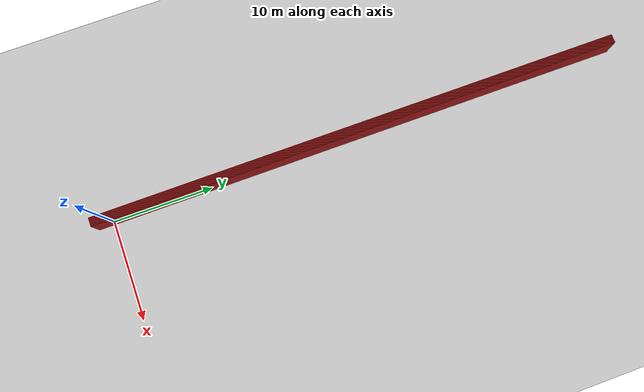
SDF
<sdf version="1.4">
 <world name="1_wall">
  <model name="ground_plane">
   <static>1</static>
   <link name="link">
    <collision name="collision">
     <geometry><plane><normal>0 0 1</normal><size>1000 1000</size></plane></geometry>
     <surface><friction><ode><mu>100</mu><mu2>50</mu2></ode></friction></surface>
    </collision>
    <visual name="visual">
     <cast_shadows>0</cast_shadows>
     <geometry><plane><normal>0 0 1</normal><size>10000 10000</size></plane></geometry>
     <material>
      <script><uri>file://media/materials/scripts/gazebo.material</uri><name>Gazebo/Grey</name></script>
     </material>
    </visual>
    <velocity_decay><linear>0</linear><angular>0</angular></velocity_decay>
   </link>
  </model>
  <model name="Wall_18">
   <static>1</static>
   <link name="Wall_18">
    <collision name="Wall_Collision_18">
     <geometry><box><size>53.65 0.05 2.5</size></box></geometry>
     <pose>0 0 1.25 0 -0 0</pose>
    </collision>
    <visual name="Wall_Visual_18">
     <pose>0 0 1.25 0 -0 0</pose>
     <geometry><box><size>53.65 0.05 2.5</size></box></geometry>
     <material>
      <script><uri>file://media/materials/scripts/gazebo.material</uri><name>Gazebo/Red</name></script>
     </material>
    </visual>
    <velocity_decay><linear>0</linear><angular>0</angular></velocity_decay>
    <pose>-0.6 25.3 0 0 0 1.5707963267948966</pose>
   </link>
  </model>
  <model name="Wall_19">
   <static>1</static>
   <link name="Wall_19">
    <collision name="Wall_Collision_19">
     <geometry><box><size>53.65 0.05 2.5</size></box></geometry>
     <pose>0 0 1.25 0 -0 0</pose>
    </collision>
    <visual name="Wall_Visual_19">
     <pose>0 0 1.25 0 -0 0</pose>
     <geometry><box><size>53.65 0.05 2.5</size></box></geometry>
     <material>
      <script><uri>file://media/materials/scripts/gazebo.material</uri><name>Gazebo/Red</name></script>
     </material>
    </visual>
    <velocity_decay><linear>0</linear><angular>0</angular></velocity_decay>
    <pose>-0.55 25.3 0 0 0 1.5707963267948966</pose>
   </link>
  </model>
  <model name="Wall_20">
   <static>1</static>
   <link name="Wall_20">
    <collision name="Wall_Collision_20">
     <geometry><box><size>53.65 0.05 2.5</size></box></geometry>
     <pose>0 0 1.25 0 -0 0</pose>
    </collision>
    <visual name="Wall_Visual_20">
     <pose>0 0 1.25 0 -0 0</pose>
     <geometry><box><size>53.65 0.05 2.5</size></box></geometry>
     <material>
      <script><uri>file://media/materials/scripts/gazebo.material</uri><name>Gazebo/Red</name></script>
     </material>
    </visual>
    <velocity_decay><linear>0</linear><angular>0</angular></velocity_decay>
    <pose>-0.5 25.3 0 0 0 1.5707963267948966</pose>
   </link>
  </model>
  <model name="Wall_21">
   <static>1</static>
   <link name="Wall_21">
    <collision name="Wall_Collision_21">
     <geometry><box><size>53.65 0.05 2.5</size></box></geometry>
     <pose>0 0 1.25 0 -0 0</pose>
    </collision>
    <visual name="Wall_Visual_21">
     <pose>0 0 1.25 0 -0 0</pose>
     <geometry><box><size>53.65 0.05 2.5</size></box></geometry>
     <material>
      <script><uri>file://media/materials/scripts/gazebo.material</uri><name>Gazebo/Red</name></script>
     </material>
    </visual>
    <velocity_decay><linear>0</linear><angular>0</angular></velocity_decay>
    <pose>-0.45 25.3 0 0 0 1.5707963267948966</pose>
   </link>
  </model>
  <model name="Wall_22">
   <static>1</static>
   <link name="Wall_22">
    <collision name="Wall_Collision_22">
     <geometry><box><size>53.65 0.05 2.5</size></box></geometry>
     <pose>0 0 1.25 0 -0 0</pose>
    </collision>
    <visual name="Wall_Visual_22">
     <pose>0 0 1.25 0 -0 0</pose>
     <geometry><box><size>53.65 0.05 2.5</size></box></geometry>
     <material>
      <script><uri>file://media/materials/scripts/gazebo.material</uri><name>Gazebo/Red</name></script>
     </material>
    </visual>
    <velocity_decay><linear>0</linear><angular>0</angular></velocity_decay>
    <pose>-0.4 25.3 0 0 0 1.5707963267948966</pose>
   </link>
  </model>
  <model name="Wall_23">
   <static>1</static>
   <link name="Wall_23">
    <collision name="Wall_Collision_23">
     <geometry><box><size>53.65 0.05 2.5</size></box></geometry>
     <pose>0 0 1.25 0 -0 0</pose>
    </collision>
    <visual name="Wall_Visual_23">
     <pose>0 0 1.25 0 -0 0</pose>
     <geometry><box><size>53.65 0.05 2.5</size></box></geometry>
     <material>
      <script><uri>file://media/materials/scripts/gazebo.material</uri><name>Gazebo/Red</name></script>
     </material>
    </visual>
    <velocity_decay><linear>0</linear><angular>0</angular></velocity_decay>
    <pose>-0.35 25.3 0 0 0 1.5707963267948966</pose>
   </link>
  </model>
  <model name="Wall_24">
   <static>1</static>
   <link name="Wall_24">
    <collision name="Wall_Collision_24">
     <geometry><box><size>53.65 0.05 2.5</size></box></geometry>
     <pose>0 0 1.25 0 -0 0</pose>
    </collision>
    <visual name="Wall_Visual_24">
     <pose>0 0 1.25 0 -0 0</pose>
     <geometry><box><size>53.65 0.05 2.5</size></box></geometry>
     <material>
      <script><uri>file://media/materials/scripts/gazebo.material</uri><name>Gazebo/Red</name></script>
     </material>
    </visual>
    <velocity_decay><linear>0</linear><angular>0</angular></velocity_decay>
    <pose>-0.3 25.3 0 0 0 1.5707963267948966</pose>
   </link>
  </model>
  <model name="Wall_25">
   <static>1</static>
   <link name="Wall_25">
    <collision name="Wall_Collision_25">
     <geometry><box><size>53.65 0.05 2.5</size></box></geometry>
     <pose>0 0 1.25 0 -0 0</pose>
    </collision>
    <visual name="Wall_Visual_25">
     <pose>0 0 1.25 0 -0 0</pose>
     <geometry><box><size>53.65 0.05 2.5</size></box></geometry>
     <material>
      <script><uri>file://media/materials/scripts/gazebo.material</uri><name>Gazebo/Red</name></script>
     </material>
    </visual>
    <velocity_decay><linear>0</linear><angular>0</angular></velocity_decay>
    <pose>-0.25 25.3 0 0 0 1.5707963267948966</pose>
   </link>
  </model>
  <model name="Wall_26">
   <static>1</static>
   <link name="Wall_26">
    <collision name="Wall_Collision_26">
     <geometry><box><size>53.65 0.05 2.5</size></box></geometry>
     <pose>0 0 1.25 0 -0 0</pose>
    </collision>
    <visual name="Wall_Visual_26">
     <pose>0 0 1.25 0 -0 0</pose>
     <geometry><box><size>53.65 0.05 2.5</size></box></geometry>
     <material>
      <script><uri>file://media/materials/scripts/gazebo.material</uri><name>Gazebo/Red</name></script>
     </material>
    </visual>
    <velocity_decay><linear>0</linear><angular>0</angular></velocity_decay>
    <pose>-0.2 25.3 0 0 0 1.5707963267948966</pose>
   </link>
  </model>
  <model name="Wall_27">
   <static>1</static>
   <link name="Wall_27">
    <collision name="Wall_Collision_27">
     <geometry><box><size>53.65 0.05 2.5</size></box></geometry>
     <pose>0 0 1.25 0 -0 0</pose>
    </collision>
    <visual name="Wall_Visual_27">
     <pose>0 0 1.25 0 -0 0</pose>
     <geometry><box><size>53.65 0.05 2.5</size></box></geometry>
     <material>
      <script><uri>file://media/materials/scripts/gazebo.material</uri><name>Gazebo/Red</name></script>
     </material>
    </visual>
    <velocity_decay><linear>0</linear><angular>0</angular></velocity_decay>
    <pose>-0.15 25.3 0 0 0 1.5707963267948966</pose>
   </link>
  </model>
  <model name="Wall_28">
   <static>1</static>
   <link name="Wall_28">
    <collision name="Wall_Collision_28">
     <geometry><box><size>53.65 0.05 2.5</size></box></geometry>
     <pose>0 0 1.25 0 -0 0</pose>
    </collision>
    <visual name="Wall_Visual_28">
     <pose>0 0 1.25 0 -0 0</pose>
     <geometry><box><size>53.65 0.05 2.5</size></box></geometry>
     <material>
      <script><uri>file://media/materials/scripts/gazebo.material</uri><name>Gazebo/Red</name></script>
     </material>
    </visual>
    <velocity_decay><linear>0</linear><angular>0</angular></velocity_decay>
    <pose>-0.1 25.3 0 0 0 1.5707963267948966</pose>
   </link>
  </model>
  <model name="Wall_29">
   <static>1</static>
   <link name="Wall_29">
    <collision name="Wall_Collision_29">
     <geometry><box><size>53.65 0.05 2.5</size></box></geometry>
     <pose>0 0 1.25 0 -0 0</pose>
    </collision>
    <visual name="Wall_Visual_29">
     <pose>0 0 1.25 0 -0 0</pose>
     <geometry><box><size>53.65 0.05 2.5</size></box></geometry>
     <material>
      <script><uri>file://media/materials/scripts/gazebo.material</uri><name>Gazebo/Red</name></script>
     </material>
    </visual>
    <velocity_decay><linear>0</linear><angular>0</angular></velocity_decay>
    <pose>-0.05 25.3 0 0 0 1.5707963267948966</pose>
   </link>
  </model>
  <model name="Wall_30">
   <static>1</static>
   <link name="Wall_30">
    <collision name="Wall_Collision_30">
     <geometry><box><size>53.65 0.05 2.5</size></box></geometry>
     <pose>0 0 1.25 0 -0 0</pose>
    </collision>
    <visual name="Wall_Visual_30">
     <pose>0 0 1.25 0 -0 0</pose>
     <geometry><box><size>53.65 0.05 2.5</size></box></geometry>
     <material>
      <script><uri>file://media/materials/scripts/gazebo.material</uri><name>Gazebo/Red</name></script>
     </material>
    </visual>
    <velocity_decay><linear>0</linear><angular>0</angular></velocity_decay>
    <pose>9.02056207508e-17 25.3 0 0 0 1.5707963267948966</pose>
   </link>
  </model>
  <model name="Wall_31">
   <static>1</static>
   <link name="Wall_31">
    <collision name="Wall_Collision_31">
     <geometry><box><size>53.65 0.05 2.5</size></box></geometry>
     <pose>0 0 1.25 0 -0 0</pose>
    </collision>
    <visual name="Wall_Visual_31">
     <pose>0 0 1.25 0 -0 0</pose>
     <geometry><box><size>53.65 0.05 2.5</size></box></geometry>
     <material>
      <script><uri>file://media/materials/scripts/gazebo.material</uri><name>Gazebo/Red</name></script>
     </material>
    </visual>
    <velocity_decay><linear>0</linear><angular>0</angular></velocity_decay>
    <pose>0.05 25.3 0 0 0 1.5707963267948966</pose>
   </link>
  </model>
  <model name="Wall_32">
   <static>1</static>
   <link name="Wall_32">
    <collision name="Wall_Collision_32">
     <geometry><box><size>53.65 0.05 2.5</size></box></geometry>
     <pose>0 0 1.25 0 -0 0</pose>
    </collision>
    <visual name="Wall_Visual_32">
     <pose>0 0 1.25 0 -0 0</pose>
     <geometry><box><size>53.65 0.05 2.5</size></box></geometry>
     <material>
      <script><uri>file://media/materials/scripts/gazebo.material</uri><name>Gazebo/Red</name></script>
     </material>
    </visual>
    <velocity_decay><linear>0</linear><angular>0</angular></velocity_decay>
    <pose>0.1 25.3 0 0 0 1.5707963267948966</pose>
   </link>
  </model>
  <model name="Wall_33">
   <static>1</static>
   <link name="Wall_33">
    <collision name="Wall_Collision_33">
     <geometry><box><size>53.65 0.05 2.5</size></box></geometry>
     <pose>0 0 1.25 0 -0 0</pose>
    </collision>
    <visual name="Wall_Visual_33">
     <pose>0 0 1.25 0 -0 0</pose>
     <geometry><box><size>53.65 0.05 2.5</size></box></geometry>
     <material>
      <script><uri>file://media/materials/scripts/gazebo.material</uri><name>Gazebo/Red</name></script>
     </material>
    </visual>
    <velocity_decay><linear>0</linear><angular>0</angular></velocity_decay>
    <pose>0.15 25.3 0 0 0 1.5707963267948966</pose>
   </link>
  </model>
  <model name="Wall_34">
   <static>1</static>
   <link name="Wall_34">
    <collision name="Wall_Collision_34">
     <geometry><box><size>53.65 0.05 2.5</size></box></geometry>
     <pose>0 0 1.25 0 -0 0</pose>
    </collision>
    <visual name="Wall_Visual_34">
     <pose>0 0 1.25 0 -0 0</pose>
     <geometry><box><size>53.65 0.05 2.5</size></box></geometry>
     <material>
      <script><uri>file://media/materials/scripts/gazebo.material</uri><name>Gazebo/Red</name></script>
     </material>
    </visual>
    <velocity_decay><linear>0</linear><angular>0</angular></velocity_decay>
    <pose>0.2 25.3 0 0 0 1.5707963267948966</pose>
   </link>
  </model>
  <model name="Wall_35">
   <static>1</static>
   <link name="Wall_35">
    <collision name="Wall_Collision_35">
     <geometry><box><size>53.65 0.05 2.5</size></box></geometry>
     <pose>0 0 1.25 0 -0 0</pose>
    </collision>
    <visual name="Wall_Visual_35">
     <pose>0 0 1.25 0 -0 0</pose>
     <geometry><box><size>53.65 0.05 2.5</size></box></geometry>
     <material>
      <script><uri>file://media/materials/scripts/gazebo.material</uri><name>Gazebo/Red</name></script>
     </material>
    </visual>
    <velocity_decay><linear>0</linear><angular>0</angular></velocity_decay>
    <pose>0.25 25.3 0 0 0 1.5707963267948966</pose>
   </link>
  </model>
 </world>
</sdf>
